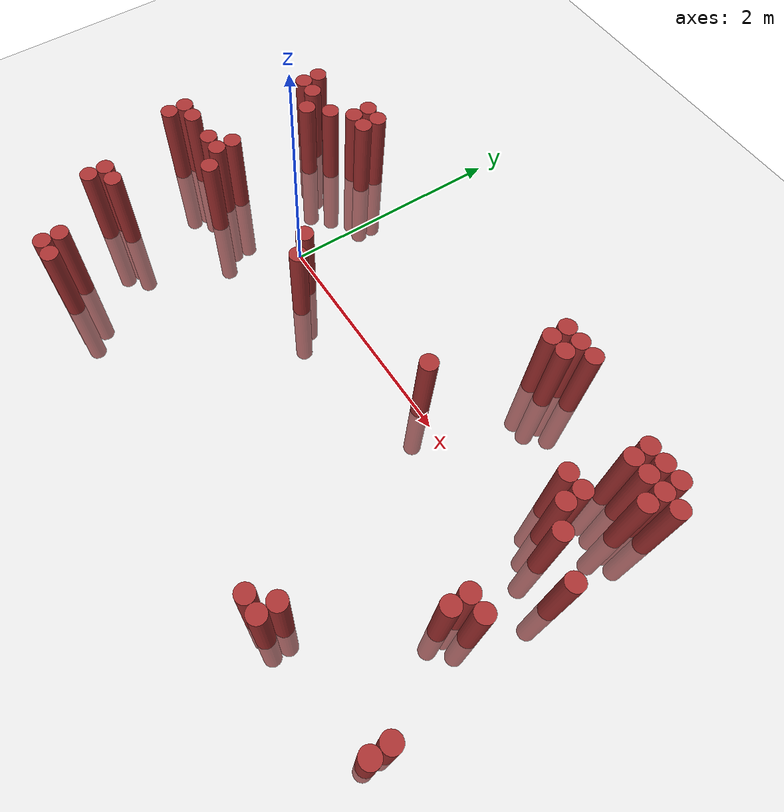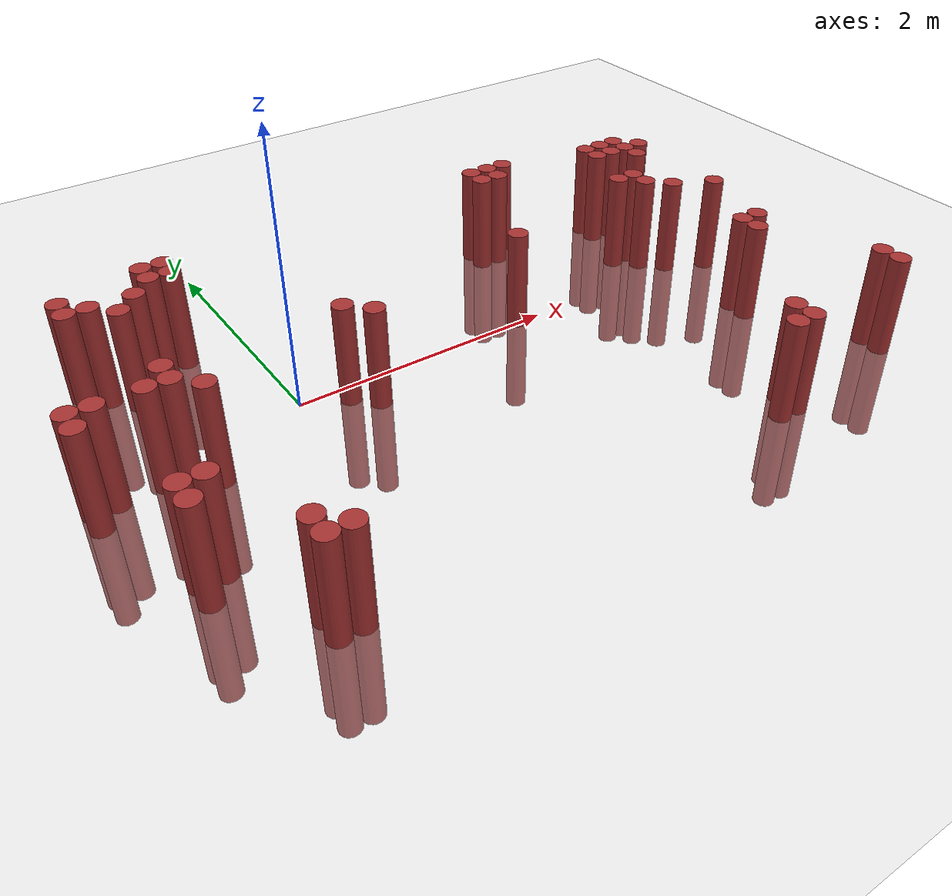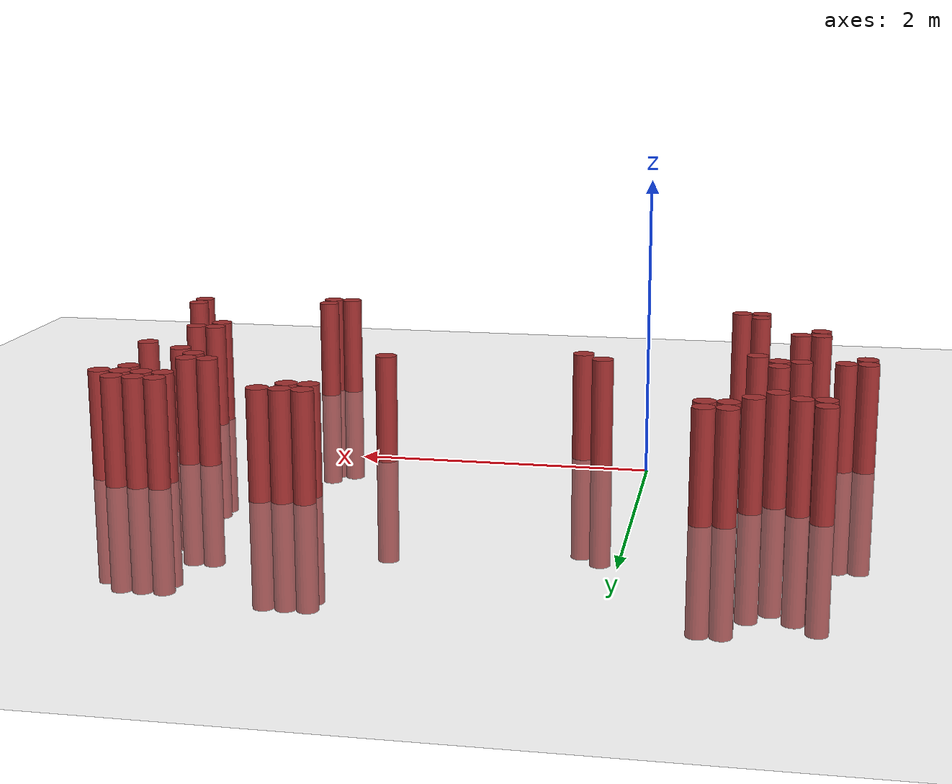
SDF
<sdf version="1.6">
 <world name="default">
  <model name="ground_plane">
   <static>1</static>
   <link name="link">
    <collision name="collision">
     <geometry><plane><normal>0 0 1</normal><size>100 100</size></plane></geometry>
     <surface><friction><ode><mu>100</mu><mu2>50</mu2></ode></friction></surface>
    </collision>
    <visual name="visual">
     <cast_shadows>0</cast_shadows>
     <geometry><plane><normal>0 0 1</normal><size>100 100</size></plane></geometry>
     <material>
      <script><uri>file://media/materials/scripts/gazebo.material</uri><name>Gazebo/Grey</name></script>
     </material>
    </visual>
   </link>
  </model>
  <model name="unit_cylinder_321">
   <static>1</static>
   <pose>-1.475000 -0.425000 0.000000 0.000000 0.000000 0.000000</pose>
   <link name="link">
    <inertial>
     <mass>1</mass>
     <inertia><ixx>0.145833</ixx><ixy>0</ixy><ixz>0</ixz><iyy>0.145833</iyy><iyz>0</iyz><izz>0.125</izz></inertia>
    </inertial>
    <collision name="collision">
     <geometry><cylinder><radius>0.075000</radius><length>1.5</length></cylinder></geometry>
    </collision>
    <visual name="visual">
     <geometry><cylinder><radius>0.075000</radius><length>1.5</length></cylinder></geometry>
     <material>
      <ambient>0.648000 0.192000 0.192000 1</ambient>
      <diffuse>0.648000 0.192000 0.192000 1</diffuse>
     </material>
     <material>
      <script><name>Gazebo/Grey</name><uri>file://media/materials/scripts/gazebo.material</uri></script>
     </material>
    </visual>
   </link>
  </model>
  <model name="unit_cylinder_322">
   <static>1</static>
   <pose>-1.475000 -0.275000 0.000000 0.000000 0.000000 0.000000</pose>
   <link name="link">
    <inertial>
     <mass>1</mass>
     <inertia><ixx>0.145833</ixx><ixy>0</ixy><ixz>0</ixz><iyy>0.145833</iyy><iyz>0</iyz><izz>0.125</izz></inertia>
    </inertial>
    <collision name="collision">
     <geometry><cylinder><radius>0.075000</radius><length>1.5</length></cylinder></geometry>
    </collision>
    <visual name="visual">
     <geometry><cylinder><radius>0.075000</radius><length>1.5</length></cylinder></geometry>
     <material>
      <ambient>0.648000 0.192000 0.192000 1</ambient>
      <diffuse>0.648000 0.192000 0.192000 1</diffuse>
     </material>
     <material>
      <script><name>Gazebo/Grey</name><uri>file://media/materials/scripts/gazebo.material</uri></script>
     </material>
    </visual>
   </link>
  </model>
  <model name="unit_cylinder_323">
   <static>1</static>
   <pose>-1.325000 -0.275000 0.000000 0.000000 0.000000 0.000000</pose>
   <link name="link">
    <inertial>
     <mass>1</mass>
     <inertia><ixx>0.145833</ixx><ixy>0</ixy><ixz>0</ixz><iyy>0.145833</iyy><iyz>0</iyz><izz>0.125</izz></inertia>
    </inertial>
    <collision name="collision">
     <geometry><cylinder><radius>0.075000</radius><length>1.5</length></cylinder></geometry>
    </collision>
    <visual name="visual">
     <geometry><cylinder><radius>0.075000</radius><length>1.5</length></cylinder></geometry>
     <material>
      <ambient>0.648000 0.192000 0.192000 1</ambient>
      <diffuse>0.648000 0.192000 0.192000 1</diffuse>
     </material>
     <material>
      <script><name>Gazebo/Grey</name><uri>file://media/materials/scripts/gazebo.material</uri></script>
     </material>
    </visual>
   </link>
  </model>
  <model name="unit_cylinder_324">
   <static>1</static>
   <pose>-1.175000 -1.325000 0.000000 0.000000 0.000000 0.000000</pose>
   <link name="link">
    <inertial>
     <mass>1</mass>
     <inertia><ixx>0.145833</ixx><ixy>0</ixy><ixz>0</ixz><iyy>0.145833</iyy><iyz>0</iyz><izz>0.125</izz></inertia>
    </inertial>
    <collision name="collision">
     <geometry><cylinder><radius>0.075000</radius><length>1.5</length></cylinder></geometry>
    </collision>
    <visual name="visual">
     <geometry><cylinder><radius>0.075000</radius><length>1.5</length></cylinder></geometry>
     <material>
      <ambient>0.648000 0.192000 0.192000 1</ambient>
      <diffuse>0.648000 0.192000 0.192000 1</diffuse>
     </material>
     <material>
      <script><name>Gazebo/Grey</name><uri>file://media/materials/scripts/gazebo.material</uri></script>
     </material>
    </visual>
   </link>
  </model>
  <model name="unit_cylinder_325">
   <static>1</static>
   <pose>-1.175000 -1.175000 0.000000 0.000000 0.000000 0.000000</pose>
   <link name="link">
    <inertial>
     <mass>1</mass>
     <inertia><ixx>0.145833</ixx><ixy>0</ixy><ixz>0</ixz><iyy>0.145833</iyy><iyz>0</iyz><izz>0.125</izz></inertia>
    </inertial>
    <collision name="collision">
     <geometry><cylinder><radius>0.075000</radius><length>1.5</length></cylinder></geometry>
    </collision>
    <visual name="visual">
     <geometry><cylinder><radius>0.075000</radius><length>1.5</length></cylinder></geometry>
     <material>
      <ambient>0.648000 0.192000 0.192000 1</ambient>
      <diffuse>0.648000 0.192000 0.192000 1</diffuse>
     </material>
     <material>
      <script><name>Gazebo/Grey</name><uri>file://media/materials/scripts/gazebo.material</uri></script>
     </material>
    </visual>
   </link>
  </model>
  <model name="unit_cylinder_326">
   <static>1</static>
   <pose>-1.175000 0.775000 0.000000 0.000000 0.000000 0.000000</pose>
   <link name="link">
    <inertial>
     <mass>1</mass>
     <inertia><ixx>0.145833</ixx><ixy>0</ixy><ixz>0</ixz><iyy>0.145833</iyy><iyz>0</iyz><izz>0.125</izz></inertia>
    </inertial>
    <collision name="collision">
     <geometry><cylinder><radius>0.075000</radius><length>1.5</length></cylinder></geometry>
    </collision>
    <visual name="visual">
     <geometry><cylinder><radius>0.075000</radius><length>1.5</length></cylinder></geometry>
     <material>
      <ambient>0.648000 0.192000 0.192000 1</ambient>
      <diffuse>0.648000 0.192000 0.192000 1</diffuse>
     </material>
     <material>
      <script><name>Gazebo/Grey</name><uri>file://media/materials/scripts/gazebo.material</uri></script>
     </material>
    </visual>
   </link>
  </model>
  <model name="unit_cylinder_327">
   <static>1</static>
   <pose>-1.175000 0.925000 0.000000 0.000000 0.000000 0.000000</pose>
   <link name="link">
    <inertial>
     <mass>1</mass>
     <inertia><ixx>0.145833</ixx><ixy>0</ixy><ixz>0</ixz><iyy>0.145833</iyy><iyz>0</iyz><izz>0.125</izz></inertia>
    </inertial>
    <collision name="collision">
     <geometry><cylinder><radius>0.075000</radius><length>1.5</length></cylinder></geometry>
    </collision>
    <visual name="visual">
     <geometry><cylinder><radius>0.075000</radius><length>1.5</length></cylinder></geometry>
     <material>
      <ambient>0.648000 0.192000 0.192000 1</ambient>
      <diffuse>0.648000 0.192000 0.192000 1</diffuse>
     </material>
     <material>
      <script><name>Gazebo/Grey</name><uri>file://media/materials/scripts/gazebo.material</uri></script>
     </material>
    </visual>
   </link>
  </model>
  <model name="unit_cylinder_328">
   <static>1</static>
   <pose>-1.025000 -1.175000 0.000000 0.000000 0.000000 0.000000</pose>
   <link name="link">
    <inertial>
     <mass>1</mass>
     <inertia><ixx>0.145833</ixx><ixy>0</ixy><ixz>0</ixz><iyy>0.145833</iyy><iyz>0</iyz><izz>0.125</izz></inertia>
    </inertial>
    <collision name="collision">
     <geometry><cylinder><radius>0.075000</radius><length>1.5</length></cylinder></geometry>
    </collision>
    <visual name="visual">
     <geometry><cylinder><radius>0.075000</radius><length>1.5</length></cylinder></geometry>
     <material>
      <ambient>0.648000 0.192000 0.192000 1</ambient>
      <diffuse>0.648000 0.192000 0.192000 1</diffuse>
     </material>
     <material>
      <script><name>Gazebo/Grey</name><uri>file://media/materials/scripts/gazebo.material</uri></script>
     </material>
    </visual>
   </link>
  </model>
  <model name="unit_cylinder_329">
   <static>1</static>
   <pose>-1.025000 -0.275000 0.000000 0.000000 0.000000 0.000000</pose>
   <link name="link">
    <inertial>
     <mass>1</mass>
     <inertia><ixx>0.145833</ixx><ixy>0</ixy><ixz>0</ixz><iyy>0.145833</iyy><iyz>0</iyz><izz>0.125</izz></inertia>
    </inertial>
    <collision name="collision">
     <geometry><cylinder><radius>0.075000</radius><length>1.5</length></cylinder></geometry>
    </collision>
    <visual name="visual">
     <geometry><cylinder><radius>0.075000</radius><length>1.5</length></cylinder></geometry>
     <material>
      <ambient>0.648000 0.192000 0.192000 1</ambient>
      <diffuse>0.648000 0.192000 0.192000 1</diffuse>
     </material>
     <material>
      <script><name>Gazebo/Grey</name><uri>file://media/materials/scripts/gazebo.material</uri></script>
     </material>
    </visual>
   </link>
  </model>
  <model name="unit_cylinder_330">
   <static>1</static>
   <pose>-1.025000 0.775000 0.000000 0.000000 0.000000 0.000000</pose>
   <link name="link">
    <inertial>
     <mass>1</mass>
     <inertia><ixx>0.145833</ixx><ixy>0</ixy><ixz>0</ixz><iyy>0.145833</iyy><iyz>0</iyz><izz>0.125</izz></inertia>
    </inertial>
    <collision name="collision">
     <geometry><cylinder><radius>0.075000</radius><length>1.5</length></cylinder></geometry>
    </collision>
    <visual name="visual">
     <geometry><cylinder><radius>0.075000</radius><length>1.5</length></cylinder></geometry>
     <material>
      <ambient>0.648000 0.192000 0.192000 1</ambient>
      <diffuse>0.648000 0.192000 0.192000 1</diffuse>
     </material>
     <material>
      <script><name>Gazebo/Grey</name><uri>file://media/materials/scripts/gazebo.material</uri></script>
     </material>
    </visual>
   </link>
  </model>
  <model name="unit_cylinder_331">
   <static>1</static>
   <pose>-0.875000 -0.275000 0.000000 0.000000 0.000000 0.000000</pose>
   <link name="link">
    <inertial>
     <mass>1</mass>
     <inertia><ixx>0.145833</ixx><ixy>0</ixy><ixz>0</ixz><iyy>0.145833</iyy><iyz>0</iyz><izz>0.125</izz></inertia>
    </inertial>
    <collision name="collision">
     <geometry><cylinder><radius>0.075000</radius><length>1.5</length></cylinder></geometry>
    </collision>
    <visual name="visual">
     <geometry><cylinder><radius>0.075000</radius><length>1.5</length></cylinder></geometry>
     <material>
      <ambient>0.648000 0.192000 0.192000 1</ambient>
      <diffuse>0.648000 0.192000 0.192000 1</diffuse>
     </material>
     <material>
      <script><name>Gazebo/Grey</name><uri>file://media/materials/scripts/gazebo.material</uri></script>
     </material>
    </visual>
   </link>
  </model>
  <model name="unit_cylinder_332">
   <static>1</static>
   <pose>-0.875000 -0.125000 0.000000 0.000000 0.000000 0.000000</pose>
   <link name="link">
    <inertial>
     <mass>1</mass>
     <inertia><ixx>0.145833</ixx><ixy>0</ixy><ixz>0</ixz><iyy>0.145833</iyy><iyz>0</iyz><izz>0.125</izz></inertia>
    </inertial>
    <collision name="collision">
     <geometry><cylinder><radius>0.075000</radius><length>1.5</length></cylinder></geometry>
    </collision>
    <visual name="visual">
     <geometry><cylinder><radius>0.075000</radius><length>1.5</length></cylinder></geometry>
     <material>
      <ambient>0.648000 0.192000 0.192000 1</ambient>
      <diffuse>0.648000 0.192000 0.192000 1</diffuse>
     </material>
     <material>
      <script><name>Gazebo/Grey</name><uri>file://media/materials/scripts/gazebo.material</uri></script>
     </material>
    </visual>
   </link>
  </model>
  <model name="unit_cylinder_333">
   <static>1</static>
   <pose>-0.875000 0.625000 0.000000 0.000000 0.000000 0.000000</pose>
   <link name="link">
    <inertial>
     <mass>1</mass>
     <inertia><ixx>0.145833</ixx><ixy>0</ixy><ixz>0</ixz><iyy>0.145833</iyy><iyz>0</iyz><izz>0.125</izz></inertia>
    </inertial>
    <collision name="collision">
     <geometry><cylinder><radius>0.075000</radius><length>1.5</length></cylinder></geometry>
    </collision>
    <visual name="visual">
     <geometry><cylinder><radius>0.075000</radius><length>1.5</length></cylinder></geometry>
     <material>
      <ambient>0.648000 0.192000 0.192000 1</ambient>
      <diffuse>0.648000 0.192000 0.192000 1</diffuse>
     </material>
     <material>
      <script><name>Gazebo/Grey</name><uri>file://media/materials/scripts/gazebo.material</uri></script>
     </material>
    </visual>
   </link>
  </model>
  <model name="unit_cylinder_336">
   <static>1</static>
   <pose>-0.725000 -1.925000 0.000000 0.000000 0.000000 0.000000</pose>
   <link name="link">
    <inertial>
     <mass>1</mass>
     <inertia><ixx>0.145833</ixx><ixy>0</ixy><ixz>0</ixz><iyy>0.145833</iyy><iyz>0</iyz><izz>0.125</izz></inertia>
    </inertial>
    <collision name="collision">
     <geometry><cylinder><radius>0.075000</radius><length>1.5</length></cylinder></geometry>
    </collision>
    <visual name="visual">
     <geometry><cylinder><radius>0.075000</radius><length>1.5</length></cylinder></geometry>
     <material>
      <ambient>0.648000 0.192000 0.192000 1</ambient>
      <diffuse>0.648000 0.192000 0.192000 1</diffuse>
     </material>
     <material>
      <script><name>Gazebo/Grey</name><uri>file://media/materials/scripts/gazebo.material</uri></script>
     </material>
    </visual>
   </link>
  </model>
  <model name="unit_cylinder_337">
   <static>1</static>
   <pose>-0.725000 -1.775000 0.000000 0.000000 0.000000 0.000000</pose>
   <link name="link">
    <inertial>
     <mass>1</mass>
     <inertia><ixx>0.145833</ixx><ixy>0</ixy><ixz>0</ixz><iyy>0.145833</iyy><iyz>0</iyz><izz>0.125</izz></inertia>
    </inertial>
    <collision name="collision">
     <geometry><cylinder><radius>0.075000</radius><length>1.5</length></cylinder></geometry>
    </collision>
    <visual name="visual">
     <geometry><cylinder><radius>0.075000</radius><length>1.5</length></cylinder></geometry>
     <material>
      <ambient>0.648000 0.192000 0.192000 1</ambient>
      <diffuse>0.648000 0.192000 0.192000 1</diffuse>
     </material>
     <material>
      <script><name>Gazebo/Grey</name><uri>file://media/materials/scripts/gazebo.material</uri></script>
     </material>
    </visual>
   </link>
  </model>
  <model name="unit_cylinder_338">
   <static>1</static>
   <pose>-0.725000 -0.425000 0.000000 0.000000 0.000000 0.000000</pose>
   <link name="link">
    <inertial>
     <mass>1</mass>
     <inertia><ixx>0.145833</ixx><ixy>0</ixy><ixz>0</ixz><iyy>0.145833</iyy><iyz>0</iyz><izz>0.125</izz></inertia>
    </inertial>
    <collision name="collision">
     <geometry><cylinder><radius>0.075000</radius><length>1.5</length></cylinder></geometry>
    </collision>
    <visual name="visual">
     <geometry><cylinder><radius>0.075000</radius><length>1.5</length></cylinder></geometry>
     <material>
      <ambient>0.648000 0.192000 0.192000 1</ambient>
      <diffuse>0.648000 0.192000 0.192000 1</diffuse>
     </material>
     <material>
      <script><name>Gazebo/Grey</name><uri>file://media/materials/scripts/gazebo.material</uri></script>
     </material>
    </visual>
   </link>
  </model>
  <model name="unit_cylinder_339">
   <static>1</static>
   <pose>-0.725000 0.775000 0.000000 0.000000 0.000000 0.000000</pose>
   <link name="link">
    <inertial>
     <mass>1</mass>
     <inertia><ixx>0.145833</ixx><ixy>0</ixy><ixz>0</ixz><iyy>0.145833</iyy><iyz>0</iyz><izz>0.125</izz></inertia>
    </inertial>
    <collision name="collision">
     <geometry><cylinder><radius>0.075000</radius><length>1.5</length></cylinder></geometry>
    </collision>
    <visual name="visual">
     <geometry><cylinder><radius>0.075000</radius><length>1.5</length></cylinder></geometry>
     <material>
      <ambient>0.648000 0.192000 0.192000 1</ambient>
      <diffuse>0.648000 0.192000 0.192000 1</diffuse>
     </material>
     <material>
      <script><name>Gazebo/Grey</name><uri>file://media/materials/scripts/gazebo.material</uri></script>
     </material>
    </visual>
   </link>
  </model>
  <model name="unit_cylinder_342">
   <static>1</static>
   <pose>-0.575000 -1.925000 0.000000 0.000000 0.000000 0.000000</pose>
   <link name="link">
    <inertial>
     <mass>1</mass>
     <inertia><ixx>0.145833</ixx><ixy>0</ixy><ixz>0</ixz><iyy>0.145833</iyy><iyz>0</iyz><izz>0.125</izz></inertia>
    </inertial>
    <collision name="collision">
     <geometry><cylinder><radius>0.075000</radius><length>1.5</length></cylinder></geometry>
    </collision>
    <visual name="visual">
     <geometry><cylinder><radius>0.075000</radius><length>1.5</length></cylinder></geometry>
     <material>
      <ambient>0.648000 0.192000 0.192000 1</ambient>
      <diffuse>0.648000 0.192000 0.192000 1</diffuse>
     </material>
     <material>
      <script><name>Gazebo/Grey</name><uri>file://media/materials/scripts/gazebo.material</uri></script>
     </material>
    </visual>
   </link>
  </model>
  <model name="unit_cylinder_343">
   <static>1</static>
   <pose>-0.575000 0.925000 0.000000 0.000000 0.000000 0.000000</pose>
   <link name="link">
    <inertial>
     <mass>1</mass>
     <inertia><ixx>0.145833</ixx><ixy>0</ixy><ixz>0</ixz><iyy>0.145833</iyy><iyz>0</iyz><izz>0.125</izz></inertia>
    </inertial>
    <collision name="collision">
     <geometry><cylinder><radius>0.075000</radius><length>1.5</length></cylinder></geometry>
    </collision>
    <visual name="visual">
     <geometry><cylinder><radius>0.075000</radius><length>1.5</length></cylinder></geometry>
     <material>
      <ambient>0.648000 0.192000 0.192000 1</ambient>
      <diffuse>0.648000 0.192000 0.192000 1</diffuse>
     </material>
     <material>
      <script><name>Gazebo/Grey</name><uri>file://media/materials/scripts/gazebo.material</uri></script>
     </material>
    </visual>
   </link>
  </model>
  <model name="unit_cylinder_344">
   <static>1</static>
   <pose>-0.575000 1.075000 0.000000 0.000000 0.000000 0.000000</pose>
   <link name="link">
    <inertial>
     <mass>1</mass>
     <inertia><ixx>0.145833</ixx><ixy>0</ixy><ixz>0</ixz><iyy>0.145833</iyy><iyz>0</iyz><izz>0.125</izz></inertia>
    </inertial>
    <collision name="collision">
     <geometry><cylinder><radius>0.075000</radius><length>1.5</length></cylinder></geometry>
    </collision>
    <visual name="visual">
     <geometry><cylinder><radius>0.075000</radius><length>1.5</length></cylinder></geometry>
     <material>
      <ambient>0.648000 0.192000 0.192000 1</ambient>
      <diffuse>0.648000 0.192000 0.192000 1</diffuse>
     </material>
     <material>
      <script><name>Gazebo/Grey</name><uri>file://media/materials/scripts/gazebo.material</uri></script>
     </material>
    </visual>
   </link>
  </model>
  <model name="unit_cylinder_347">
   <static>1</static>
   <pose>-0.425000 0.925000 0.000000 0.000000 0.000000 0.000000</pose>
   <link name="link">
    <inertial>
     <mass>1</mass>
     <inertia><ixx>0.145833</ixx><ixy>0</ixy><ixz>0</ixz><iyy>0.145833</iyy><iyz>0</iyz><izz>0.125</izz></inertia>
    </inertial>
    <collision name="collision">
     <geometry><cylinder><radius>0.075000</radius><length>1.5</length></cylinder></geometry>
    </collision>
    <visual name="visual">
     <geometry><cylinder><radius>0.075000</radius><length>1.5</length></cylinder></geometry>
     <material>
      <ambient>0.648000 0.192000 0.192000 1</ambient>
      <diffuse>0.648000 0.192000 0.192000 1</diffuse>
     </material>
     <material>
      <script><name>Gazebo/Grey</name><uri>file://media/materials/scripts/gazebo.material</uri></script>
     </material>
    </visual>
   </link>
  </model>
  <model name="unit_cylinder_348">
   <static>1</static>
   <pose>-0.425000 1.075000 0.000000 0.000000 0.000000 0.000000</pose>
   <link name="link">
    <inertial>
     <mass>1</mass>
     <inertia><ixx>0.145833</ixx><ixy>0</ixy><ixz>0</ixz><iyy>0.145833</iyy><iyz>0</iyz><izz>0.125</izz></inertia>
    </inertial>
    <collision name="collision">
     <geometry><cylinder><radius>0.075000</radius><length>1.5</length></cylinder></geometry>
    </collision>
    <visual name="visual">
     <geometry><cylinder><radius>0.075000</radius><length>1.5</length></cylinder></geometry>
     <material>
      <ambient>0.648000 0.192000 0.192000 1</ambient>
      <diffuse>0.648000 0.192000 0.192000 1</diffuse>
     </material>
     <material>
      <script><name>Gazebo/Grey</name><uri>file://media/materials/scripts/gazebo.material</uri></script>
     </material>
    </visual>
   </link>
  </model>
  <model name="unit_cylinder_353">
   <static>1</static>
   <pose>0.325000 -0.125000 0.000000 0.000000 0.000000 0.000000</pose>
   <link name="link">
    <inertial>
     <mass>1</mass>
     <inertia><ixx>0.145833</ixx><ixy>0</ixy><ixz>0</ixz><iyy>0.145833</iyy><iyz>0</iyz><izz>0.125</izz></inertia>
    </inertial>
    <collision name="collision">
     <geometry><cylinder><radius>0.075000</radius><length>1.5</length></cylinder></geometry>
    </collision>
    <visual name="visual">
     <geometry><cylinder><radius>0.075000</radius><length>1.5</length></cylinder></geometry>
     <material>
      <ambient>0.648000 0.192000 0.192000 1</ambient>
      <diffuse>0.648000 0.192000 0.192000 1</diffuse>
     </material>
     <material>
      <script><name>Gazebo/Grey</name><uri>file://media/materials/scripts/gazebo.material</uri></script>
     </material>
    </visual>
   </link>
  </model>
  <model name="unit_cylinder_354">
   <static>1</static>
   <pose>0.475000 -0.275000 0.000000 0.000000 0.000000 0.000000</pose>
   <link name="link">
    <inertial>
     <mass>1</mass>
     <inertia><ixx>0.145833</ixx><ixy>0</ixy><ixz>0</ixz><iyy>0.145833</iyy><iyz>0</iyz><izz>0.125</izz></inertia>
    </inertial>
    <collision name="collision">
     <geometry><cylinder><radius>0.075000</radius><length>1.5</length></cylinder></geometry>
    </collision>
    <visual name="visual">
     <geometry><cylinder><radius>0.075000</radius><length>1.5</length></cylinder></geometry>
     <material>
      <ambient>0.648000 0.192000 0.192000 1</ambient>
      <diffuse>0.648000 0.192000 0.192000 1</diffuse>
     </material>
     <material>
      <script><name>Gazebo/Grey</name><uri>file://media/materials/scripts/gazebo.material</uri></script>
     </material>
    </visual>
   </link>
  </model>
  <model name="unit_cylinder_374">
   <static>1</static>
   <pose>1.825000 0.025000 0.000000 0.000000 0.000000 0.000000</pose>
   <link name="link">
    <inertial>
     <mass>1</mass>
     <inertia><ixx>0.145833</ixx><ixy>0</ixy><ixz>0</ixz><iyy>0.145833</iyy><iyz>0</iyz><izz>0.125</izz></inertia>
    </inertial>
    <collision name="collision">
     <geometry><cylinder><radius>0.075000</radius><length>1.5</length></cylinder></geometry>
    </collision>
    <visual name="visual">
     <geometry><cylinder><radius>0.075000</radius><length>1.5</length></cylinder></geometry>
     <material>
      <ambient>0.648000 0.192000 0.192000 1</ambient>
      <diffuse>0.648000 0.192000 0.192000 1</diffuse>
     </material>
     <material>
      <script><name>Gazebo/Grey</name><uri>file://media/materials/scripts/gazebo.material</uri></script>
     </material>
    </visual>
   </link>
  </model>
  <model name="unit_cylinder_376">
   <static>1</static>
   <pose>2.125000 0.925000 0.000000 0.000000 0.000000 0.000000</pose>
   <link name="link">
    <inertial>
     <mass>1</mass>
     <inertia><ixx>0.145833</ixx><ixy>0</ixy><ixz>0</ixz><iyy>0.145833</iyy><iyz>0</iyz><izz>0.125</izz></inertia>
    </inertial>
    <collision name="collision">
     <geometry><cylinder><radius>0.075000</radius><length>1.5</length></cylinder></geometry>
    </collision>
    <visual name="visual">
     <geometry><cylinder><radius>0.075000</radius><length>1.5</length></cylinder></geometry>
     <material>
      <ambient>0.648000 0.192000 0.192000 1</ambient>
      <diffuse>0.648000 0.192000 0.192000 1</diffuse>
     </material>
     <material>
      <script><name>Gazebo/Grey</name><uri>file://media/materials/scripts/gazebo.material</uri></script>
     </material>
    </visual>
   </link>
  </model>
  <model name="unit_cylinder_377">
   <static>1</static>
   <pose>2.125000 1.075000 0.000000 0.000000 0.000000 0.000000</pose>
   <link name="link">
    <inertial>
     <mass>1</mass>
     <inertia><ixx>0.145833</ixx><ixy>0</ixy><ixz>0</ixz><iyy>0.145833</iyy><iyz>0</iyz><izz>0.125</izz></inertia>
    </inertial>
    <collision name="collision">
     <geometry><cylinder><radius>0.075000</radius><length>1.5</length></cylinder></geometry>
    </collision>
    <visual name="visual">
     <geometry><cylinder><radius>0.075000</radius><length>1.5</length></cylinder></geometry>
     <material>
      <ambient>0.648000 0.192000 0.192000 1</ambient>
      <diffuse>0.648000 0.192000 0.192000 1</diffuse>
     </material>
     <material>
      <script><name>Gazebo/Grey</name><uri>file://media/materials/scripts/gazebo.material</uri></script>
     </material>
    </visual>
   </link>
  </model>
  <model name="unit_cylinder_379">
   <static>1</static>
   <pose>2.275000 0.925000 0.000000 0.000000 0.000000 0.000000</pose>
   <link name="link">
    <inertial>
     <mass>1</mass>
     <inertia><ixx>0.145833</ixx><ixy>0</ixy><ixz>0</ixz><iyy>0.145833</iyy><iyz>0</iyz><izz>0.125</izz></inertia>
    </inertial>
    <collision name="collision">
     <geometry><cylinder><radius>0.075000</radius><length>1.5</length></cylinder></geometry>
    </collision>
    <visual name="visual">
     <geometry><cylinder><radius>0.075000</radius><length>1.5</length></cylinder></geometry>
     <material>
      <ambient>0.648000 0.192000 0.192000 1</ambient>
      <diffuse>0.648000 0.192000 0.192000 1</diffuse>
     </material>
     <material>
      <script><name>Gazebo/Grey</name><uri>file://media/materials/scripts/gazebo.material</uri></script>
     </material>
    </visual>
   </link>
  </model>
  <model name="unit_cylinder_380">
   <static>1</static>
   <pose>2.275000 1.075000 0.000000 0.000000 0.000000 0.000000</pose>
   <link name="link">
    <inertial>
     <mass>1</mass>
     <inertia><ixx>0.145833</ixx><ixy>0</ixy><ixz>0</ixz><iyy>0.145833</iyy><iyz>0</iyz><izz>0.125</izz></inertia>
    </inertial>
    <collision name="collision">
     <geometry><cylinder><radius>0.075000</radius><length>1.5</length></cylinder></geometry>
    </collision>
    <visual name="visual">
     <geometry><cylinder><radius>0.075000</radius><length>1.5</length></cylinder></geometry>
     <material>
      <ambient>0.648000 0.192000 0.192000 1</ambient>
      <diffuse>0.648000 0.192000 0.192000 1</diffuse>
     </material>
     <material>
      <script><name>Gazebo/Grey</name><uri>file://media/materials/scripts/gazebo.material</uri></script>
     </material>
    </visual>
   </link>
  </model>
  <model name="unit_cylinder_383">
   <static>1</static>
   <pose>2.425000 1.075000 0.000000 0.000000 0.000000 0.000000</pose>
   <link name="link">
    <inertial>
     <mass>1</mass>
     <inertia><ixx>0.145833</ixx><ixy>0</ixy><ixz>0</ixz><iyy>0.145833</iyy><iyz>0</iyz><izz>0.125</izz></inertia>
    </inertial>
    <collision name="collision">
     <geometry><cylinder><radius>0.075000</radius><length>1.5</length></cylinder></geometry>
    </collision>
    <visual name="visual">
     <geometry><cylinder><radius>0.075000</radius><length>1.5</length></cylinder></geometry>
     <material>
      <ambient>0.648000 0.192000 0.192000 1</ambient>
      <diffuse>0.648000 0.192000 0.192000 1</diffuse>
     </material>
     <material>
      <script><name>Gazebo/Grey</name><uri>file://media/materials/scripts/gazebo.material</uri></script>
     </material>
    </visual>
   </link>
  </model>
  <model name="unit_cylinder_385">
   <static>1</static>
   <pose>2.575000 -1.925000 0.000000 0.000000 0.000000 0.000000</pose>
   <link name="link">
    <inertial>
     <mass>1</mass>
     <inertia><ixx>0.145833</ixx><ixy>0</ixy><ixz>0</ixz><iyy>0.145833</iyy><iyz>0</iyz><izz>0.125</izz></inertia>
    </inertial>
    <collision name="collision">
     <geometry><cylinder><radius>0.075000</radius><length>1.5</length></cylinder></geometry>
    </collision>
    <visual name="visual">
     <geometry><cylinder><radius>0.075000</radius><length>1.5</length></cylinder></geometry>
     <material>
      <ambient>0.648000 0.192000 0.192000 1</ambient>
      <diffuse>0.648000 0.192000 0.192000 1</diffuse>
     </material>
     <material>
      <script><name>Gazebo/Grey</name><uri>file://media/materials/scripts/gazebo.material</uri></script>
     </material>
    </visual>
   </link>
  </model>
  <model name="unit_cylinder_389">
   <static>1</static>
   <pose>2.725000 -1.925000 0.000000 0.000000 0.000000 0.000000</pose>
   <link name="link">
    <inertial>
     <mass>1</mass>
     <inertia><ixx>0.145833</ixx><ixy>0</ixy><ixz>0</ixz><iyy>0.145833</iyy><iyz>0</iyz><izz>0.125</izz></inertia>
    </inertial>
    <collision name="collision">
     <geometry><cylinder><radius>0.075000</radius><length>1.5</length></cylinder></geometry>
    </collision>
    <visual name="visual">
     <geometry><cylinder><radius>0.075000</radius><length>1.5</length></cylinder></geometry>
     <material>
      <ambient>0.648000 0.192000 0.192000 1</ambient>
      <diffuse>0.648000 0.192000 0.192000 1</diffuse>
     </material>
     <material>
      <script><name>Gazebo/Grey</name><uri>file://media/materials/scripts/gazebo.material</uri></script>
     </material>
    </visual>
   </link>
  </model>
  <model name="unit_cylinder_390">
   <static>1</static>
   <pose>2.725000 -1.775000 0.000000 0.000000 0.000000 0.000000</pose>
   <link name="link">
    <inertial>
     <mass>1</mass>
     <inertia><ixx>0.145833</ixx><ixy>0</ixy><ixz>0</ixz><iyy>0.145833</iyy><iyz>0</iyz><izz>0.125</izz></inertia>
    </inertial>
    <collision name="collision">
     <geometry><cylinder><radius>0.075000</radius><length>1.5</length></cylinder></geometry>
    </collision>
    <visual name="visual">
     <geometry><cylinder><radius>0.075000</radius><length>1.5</length></cylinder></geometry>
     <material>
      <ambient>0.648000 0.192000 0.192000 1</ambient>
      <diffuse>0.648000 0.192000 0.192000 1</diffuse>
     </material>
     <material>
      <script><name>Gazebo/Grey</name><uri>file://media/materials/scripts/gazebo.material</uri></script>
     </material>
    </visual>
   </link>
  </model>
  <model name="unit_cylinder_397">
   <static>1</static>
   <pose>3.025000 0.325000 0.000000 0.000000 0.000000 0.000000</pose>
   <link name="link">
    <inertial>
     <mass>1</mass>
     <inertia><ixx>0.145833</ixx><ixy>0</ixy><ixz>0</ixz><iyy>0.145833</iyy><iyz>0</iyz><izz>0.125</izz></inertia>
    </inertial>
    <collision name="collision">
     <geometry><cylinder><radius>0.075000</radius><length>1.5</length></cylinder></geometry>
    </collision>
    <visual name="visual">
     <geometry><cylinder><radius>0.075000</radius><length>1.5</length></cylinder></geometry>
     <material>
      <ambient>0.648000 0.192000 0.192000 1</ambient>
      <diffuse>0.648000 0.192000 0.192000 1</diffuse>
     </material>
     <material>
      <script><name>Gazebo/Grey</name><uri>file://media/materials/scripts/gazebo.material</uri></script>
     </material>
    </visual>
   </link>
  </model>
  <model name="unit_cylinder_401">
   <static>1</static>
   <pose>3.175000 0.175000 0.000000 0.000000 0.000000 0.000000</pose>
   <link name="link">
    <inertial>
     <mass>1</mass>
     <inertia><ixx>0.145833</ixx><ixy>0</ixy><ixz>0</ixz><iyy>0.145833</iyy><iyz>0</iyz><izz>0.125</izz></inertia>
    </inertial>
    <collision name="collision">
     <geometry><cylinder><radius>0.075000</radius><length>1.5</length></cylinder></geometry>
    </collision>
    <visual name="visual">
     <geometry><cylinder><radius>0.075000</radius><length>1.5</length></cylinder></geometry>
     <material>
      <ambient>0.648000 0.192000 0.192000 1</ambient>
      <diffuse>0.648000 0.192000 0.192000 1</diffuse>
     </material>
     <material>
      <script><name>Gazebo/Grey</name><uri>file://media/materials/scripts/gazebo.material</uri></script>
     </material>
    </visual>
   </link>
  </model>
  <model name="unit_cylinder_402">
   <static>1</static>
   <pose>3.175000 0.325000 0.000000 0.000000 0.000000 0.000000</pose>
   <link name="link">
    <inertial>
     <mass>1</mass>
     <inertia><ixx>0.145833</ixx><ixy>0</ixy><ixz>0</ixz><iyy>0.145833</iyy><iyz>0</iyz><izz>0.125</izz></inertia>
    </inertial>
    <collision name="collision">
     <geometry><cylinder><radius>0.075000</radius><length>1.5</length></cylinder></geometry>
    </collision>
    <visual name="visual">
     <geometry><cylinder><radius>0.075000</radius><length>1.5</length></cylinder></geometry>
     <material>
      <ambient>0.648000 0.192000 0.192000 1</ambient>
      <diffuse>0.648000 0.192000 0.192000 1</diffuse>
     </material>
     <material>
      <script><name>Gazebo/Grey</name><uri>file://media/materials/scripts/gazebo.material</uri></script>
     </material>
    </visual>
   </link>
  </model>
  <model name="unit_cylinder_403">
   <static>1</static>
   <pose>3.175000 0.775000 0.000000 0.000000 0.000000 0.000000</pose>
   <link name="link">
    <inertial>
     <mass>1</mass>
     <inertia><ixx>0.145833</ixx><ixy>0</ixy><ixz>0</ixz><iyy>0.145833</iyy><iyz>0</iyz><izz>0.125</izz></inertia>
    </inertial>
    <collision name="collision">
     <geometry><cylinder><radius>0.075000</radius><length>1.5</length></cylinder></geometry>
    </collision>
    <visual name="visual">
     <geometry><cylinder><radius>0.075000</radius><length>1.5</length></cylinder></geometry>
     <material>
      <ambient>0.648000 0.192000 0.192000 1</ambient>
      <diffuse>0.648000 0.192000 0.192000 1</diffuse>
     </material>
     <material>
      <script><name>Gazebo/Grey</name><uri>file://media/materials/scripts/gazebo.material</uri></script>
     </material>
    </visual>
   </link>
  </model>
  <model name="unit_cylinder_404">
   <static>1</static>
   <pose>3.175000 0.925000 0.000000 0.000000 0.000000 0.000000</pose>
   <link name="link">
    <inertial>
     <mass>1</mass>
     <inertia><ixx>0.145833</ixx><ixy>0</ixy><ixz>0</ixz><iyy>0.145833</iyy><iyz>0</iyz><izz>0.125</izz></inertia>
    </inertial>
    <collision name="collision">
     <geometry><cylinder><radius>0.075000</radius><length>1.5</length></cylinder></geometry>
    </collision>
    <visual name="visual">
     <geometry><cylinder><radius>0.075000</radius><length>1.5</length></cylinder></geometry>
     <material>
      <ambient>0.648000 0.192000 0.192000 1</ambient>
      <diffuse>0.648000 0.192000 0.192000 1</diffuse>
     </material>
     <material>
      <script><name>Gazebo/Grey</name><uri>file://media/materials/scripts/gazebo.material</uri></script>
     </material>
    </visual>
   </link>
  </model>
  <model name="unit_cylinder_409">
   <static>1</static>
   <pose>3.325000 -0.875000 0.000000 0.000000 0.000000 0.000000</pose>
   <link name="link">
    <inertial>
     <mass>1</mass>
     <inertia><ixx>0.145833</ixx><ixy>0</ixy><ixz>0</ixz><iyy>0.145833</iyy><iyz>0</iyz><izz>0.125</izz></inertia>
    </inertial>
    <collision name="collision">
     <geometry><cylinder><radius>0.075000</radius><length>1.5</length></cylinder></geometry>
    </collision>
    <visual name="visual">
     <geometry><cylinder><radius>0.075000</radius><length>1.5</length></cylinder></geometry>
     <material>
      <ambient>0.648000 0.192000 0.192000 1</ambient>
      <diffuse>0.648000 0.192000 0.192000 1</diffuse>
     </material>
     <material>
      <script><name>Gazebo/Grey</name><uri>file://media/materials/scripts/gazebo.material</uri></script>
     </material>
    </visual>
   </link>
  </model>
  <model name="unit_cylinder_410">
   <static>1</static>
   <pose>3.325000 -0.725000 0.000000 0.000000 0.000000 0.000000</pose>
   <link name="link">
    <inertial>
     <mass>1</mass>
     <inertia><ixx>0.145833</ixx><ixy>0</ixy><ixz>0</ixz><iyy>0.145833</iyy><iyz>0</iyz><izz>0.125</izz></inertia>
    </inertial>
    <collision name="collision">
     <geometry><cylinder><radius>0.075000</radius><length>1.5</length></cylinder></geometry>
    </collision>
    <visual name="visual">
     <geometry><cylinder><radius>0.075000</radius><length>1.5</length></cylinder></geometry>
     <material>
      <ambient>0.648000 0.192000 0.192000 1</ambient>
      <diffuse>0.648000 0.192000 0.192000 1</diffuse>
     </material>
     <material>
      <script><name>Gazebo/Grey</name><uri>file://media/materials/scripts/gazebo.material</uri></script>
     </material>
    </visual>
   </link>
  </model>
  <model name="unit_cylinder_411">
   <static>1</static>
   <pose>3.325000 0.025000 0.000000 0.000000 0.000000 0.000000</pose>
   <link name="link">
    <inertial>
     <mass>1</mass>
     <inertia><ixx>0.145833</ixx><ixy>0</ixy><ixz>0</ixz><iyy>0.145833</iyy><iyz>0</iyz><izz>0.125</izz></inertia>
    </inertial>
    <collision name="collision">
     <geometry><cylinder><radius>0.075000</radius><length>1.5</length></cylinder></geometry>
    </collision>
    <visual name="visual">
     <geometry><cylinder><radius>0.075000</radius><length>1.5</length></cylinder></geometry>
     <material>
      <ambient>0.648000 0.192000 0.192000 1</ambient>
      <diffuse>0.648000 0.192000 0.192000 1</diffuse>
     </material>
     <material>
      <script><name>Gazebo/Grey</name><uri>file://media/materials/scripts/gazebo.material</uri></script>
     </material>
    </visual>
   </link>
  </model>
  <model name="unit_cylinder_412">
   <static>1</static>
   <pose>3.325000 0.775000 0.000000 0.000000 0.000000 0.000000</pose>
   <link name="link">
    <inertial>
     <mass>1</mass>
     <inertia><ixx>0.145833</ixx><ixy>0</ixy><ixz>0</ixz><iyy>0.145833</iyy><iyz>0</iyz><izz>0.125</izz></inertia>
    </inertial>
    <collision name="collision">
     <geometry><cylinder><radius>0.075000</radius><length>1.5</length></cylinder></geometry>
    </collision>
    <visual name="visual">
     <geometry><cylinder><radius>0.075000</radius><length>1.5</length></cylinder></geometry>
     <material>
      <ambient>0.648000 0.192000 0.192000 1</ambient>
      <diffuse>0.648000 0.192000 0.192000 1</diffuse>
     </material>
     <material>
      <script><name>Gazebo/Grey</name><uri>file://media/materials/scripts/gazebo.material</uri></script>
     </material>
    </visual>
   </link>
  </model>
  <model name="unit_cylinder_413">
   <static>1</static>
   <pose>3.325000 0.925000 0.000000 0.000000 0.000000 0.000000</pose>
   <link name="link">
    <inertial>
     <mass>1</mass>
     <inertia><ixx>0.145833</ixx><ixy>0</ixy><ixz>0</ixz><iyy>0.145833</iyy><iyz>0</iyz><izz>0.125</izz></inertia>
    </inertial>
    <collision name="collision">
     <geometry><cylinder><radius>0.075000</radius><length>1.5</length></cylinder></geometry>
    </collision>
    <visual name="visual">
     <geometry><cylinder><radius>0.075000</radius><length>1.5</length></cylinder></geometry>
     <material>
      <ambient>0.648000 0.192000 0.192000 1</ambient>
      <diffuse>0.648000 0.192000 0.192000 1</diffuse>
     </material>
     <material>
      <script><name>Gazebo/Grey</name><uri>file://media/materials/scripts/gazebo.material</uri></script>
     </material>
    </visual>
   </link>
  </model>
  <model name="unit_cylinder_415">
   <static>1</static>
   <pose>3.475000 -0.725000 0.000000 0.000000 0.000000 0.000000</pose>
   <link name="link">
    <inertial>
     <mass>1</mass>
     <inertia><ixx>0.145833</ixx><ixy>0</ixy><ixz>0</ixz><iyy>0.145833</iyy><iyz>0</iyz><izz>0.125</izz></inertia>
    </inertial>
    <collision name="collision">
     <geometry><cylinder><radius>0.075000</radius><length>1.5</length></cylinder></geometry>
    </collision>
    <visual name="visual">
     <geometry><cylinder><radius>0.075000</radius><length>1.5</length></cylinder></geometry>
     <material>
      <ambient>0.648000 0.192000 0.192000 1</ambient>
      <diffuse>0.648000 0.192000 0.192000 1</diffuse>
     </material>
     <material>
      <script><name>Gazebo/Grey</name><uri>file://media/materials/scripts/gazebo.material</uri></script>
     </material>
    </visual>
   </link>
  </model>
  <model name="unit_cylinder_416">
   <static>1</static>
   <pose>3.475000 0.625000 0.000000 0.000000 0.000000 0.000000</pose>
   <link name="link">
    <inertial>
     <mass>1</mass>
     <inertia><ixx>0.145833</ixx><ixy>0</ixy><ixz>0</ixz><iyy>0.145833</iyy><iyz>0</iyz><izz>0.125</izz></inertia>
    </inertial>
    <collision name="collision">
     <geometry><cylinder><radius>0.075000</radius><length>1.5</length></cylinder></geometry>
    </collision>
    <visual name="visual">
     <geometry><cylinder><radius>0.075000</radius><length>1.5</length></cylinder></geometry>
     <material>
      <ambient>0.648000 0.192000 0.192000 1</ambient>
      <diffuse>0.648000 0.192000 0.192000 1</diffuse>
     </material>
     <material>
      <script><name>Gazebo/Grey</name><uri>file://media/materials/scripts/gazebo.material</uri></script>
     </material>
    </visual>
   </link>
  </model>
  <model name="unit_cylinder_417">
   <static>1</static>
   <pose>3.475000 0.775000 0.000000 0.000000 0.000000 0.000000</pose>
   <link name="link">
    <inertial>
     <mass>1</mass>
     <inertia><ixx>0.145833</ixx><ixy>0</ixy><ixz>0</ixz><iyy>0.145833</iyy><iyz>0</iyz><izz>0.125</izz></inertia>
    </inertial>
    <collision name="collision">
     <geometry><cylinder><radius>0.075000</radius><length>1.5</length></cylinder></geometry>
    </collision>
    <visual name="visual">
     <geometry><cylinder><radius>0.075000</radius><length>1.5</length></cylinder></geometry>
     <material>
      <ambient>0.648000 0.192000 0.192000 1</ambient>
      <diffuse>0.648000 0.192000 0.192000 1</diffuse>
     </material>
     <material>
      <script><name>Gazebo/Grey</name><uri>file://media/materials/scripts/gazebo.material</uri></script>
     </material>
    </visual>
   </link>
  </model>
  <model name="unit_cylinder_418">
   <static>1</static>
   <pose>3.475000 0.925000 0.000000 0.000000 0.000000 0.000000</pose>
   <link name="link">
    <inertial>
     <mass>1</mass>
     <inertia><ixx>0.145833</ixx><ixy>0</ixy><ixz>0</ixz><iyy>0.145833</iyy><iyz>0</iyz><izz>0.125</izz></inertia>
    </inertial>
    <collision name="collision">
     <geometry><cylinder><radius>0.075000</radius><length>1.5</length></cylinder></geometry>
    </collision>
    <visual name="visual">
     <geometry><cylinder><radius>0.075000</radius><length>1.5</length></cylinder></geometry>
     <material>
      <ambient>0.648000 0.192000 0.192000 1</ambient>
      <diffuse>0.648000 0.192000 0.192000 1</diffuse>
     </material>
     <material>
      <script><name>Gazebo/Grey</name><uri>file://media/materials/scripts/gazebo.material</uri></script>
     </material>
    </visual>
   </link>
  </model>
  <model name="unit_cylinder_426">
   <static>1</static>
   <pose>3.625000 -0.125000 0.000000 0.000000 0.000000 0.000000</pose>
   <link name="link">
    <inertial>
     <mass>1</mass>
     <inertia><ixx>0.145833</ixx><ixy>0</ixy><ixz>0</ixz><iyy>0.145833</iyy><iyz>0</iyz><izz>0.125</izz></inertia>
    </inertial>
    <collision name="collision">
     <geometry><cylinder><radius>0.075000</radius><length>1.5</length></cylinder></geometry>
    </collision>
    <visual name="visual">
     <geometry><cylinder><radius>0.075000</radius><length>1.5</length></cylinder></geometry>
     <material>
      <ambient>0.648000 0.192000 0.192000 1</ambient>
      <diffuse>0.648000 0.192000 0.192000 1</diffuse>
     </material>
     <material>
      <script><name>Gazebo/Grey</name><uri>file://media/materials/scripts/gazebo.material</uri></script>
     </material>
    </visual>
   </link>
  </model>
  <model name="unit_cylinder_427">
   <static>1</static>
   <pose>3.625000 0.775000 0.000000 0.000000 0.000000 0.000000</pose>
   <link name="link">
    <inertial>
     <mass>1</mass>
     <inertia><ixx>0.145833</ixx><ixy>0</ixy><ixz>0</ixz><iyy>0.145833</iyy><iyz>0</iyz><izz>0.125</izz></inertia>
    </inertial>
    <collision name="collision">
     <geometry><cylinder><radius>0.075000</radius><length>1.5</length></cylinder></geometry>
    </collision>
    <visual name="visual">
     <geometry><cylinder><radius>0.075000</radius><length>1.5</length></cylinder></geometry>
     <material>
      <ambient>0.648000 0.192000 0.192000 1</ambient>
      <diffuse>0.648000 0.192000 0.192000 1</diffuse>
     </material>
     <material>
      <script><name>Gazebo/Grey</name><uri>file://media/materials/scripts/gazebo.material</uri></script>
     </material>
    </visual>
   </link>
  </model>
  <model name="unit_cylinder_435">
   <static>1</static>
   <pose>3.775000 -1.775000 0.000000 0.000000 0.000000 0.000000</pose>
   <link name="link">
    <inertial>
     <mass>1</mass>
     <inertia><ixx>0.145833</ixx><ixy>0</ixy><ixz>0</ixz><iyy>0.145833</iyy><iyz>0</iyz><izz>0.125</izz></inertia>
    </inertial>
    <collision name="collision">
     <geometry><cylinder><radius>0.075000</radius><length>1.5</length></cylinder></geometry>
    </collision>
    <visual name="visual">
     <geometry><cylinder><radius>0.075000</radius><length>1.5</length></cylinder></geometry>
     <material>
      <ambient>0.648000 0.192000 0.192000 1</ambient>
      <diffuse>0.648000 0.192000 0.192000 1</diffuse>
     </material>
     <material>
      <script><name>Gazebo/Grey</name><uri>file://media/materials/scripts/gazebo.material</uri></script>
     </material>
    </visual>
   </link>
  </model>
  <model name="unit_cylinder_436">
   <static>1</static>
   <pose>3.775000 -1.625000 0.000000 0.000000 0.000000 0.000000</pose>
   <link name="link">
    <inertial>
     <mass>1</mass>
     <inertia><ixx>0.145833</ixx><ixy>0</ixy><ixz>0</ixz><iyy>0.145833</iyy><iyz>0</iyz><izz>0.125</izz></inertia>
    </inertial>
    <collision name="collision">
     <geometry><cylinder><radius>0.075000</radius><length>1.5</length></cylinder></geometry>
    </collision>
    <visual name="visual">
     <geometry><cylinder><radius>0.075000</radius><length>1.5</length></cylinder></geometry>
     <material>
      <ambient>0.648000 0.192000 0.192000 1</ambient>
      <diffuse>0.648000 0.192000 0.192000 1</diffuse>
     </material>
     <material>
      <script><name>Gazebo/Grey</name><uri>file://media/materials/scripts/gazebo.material</uri></script>
     </material>
    </visual>
   </link>
  </model>
 </world>
</sdf>
